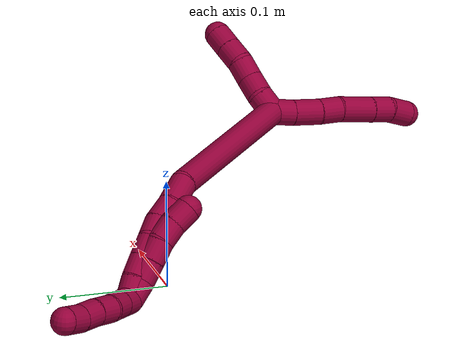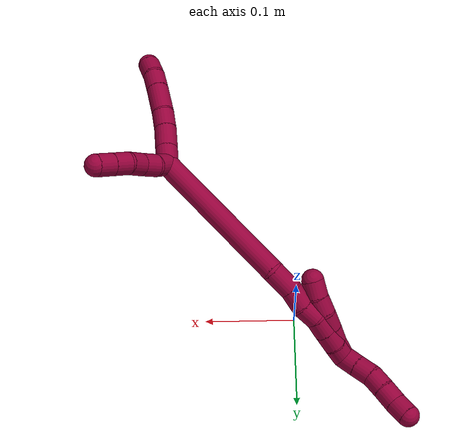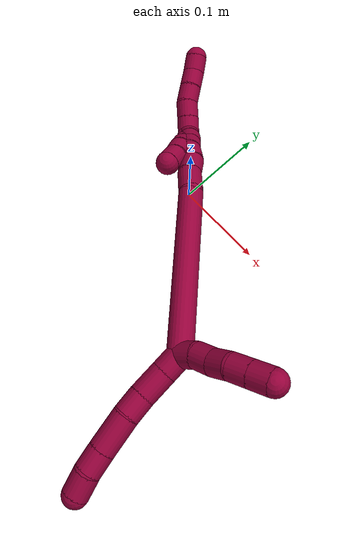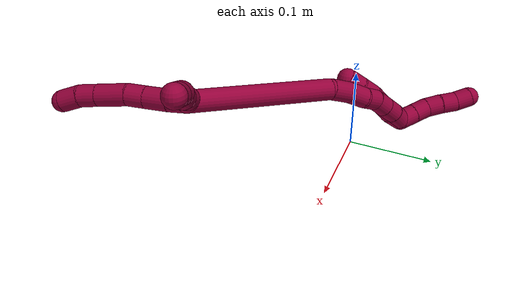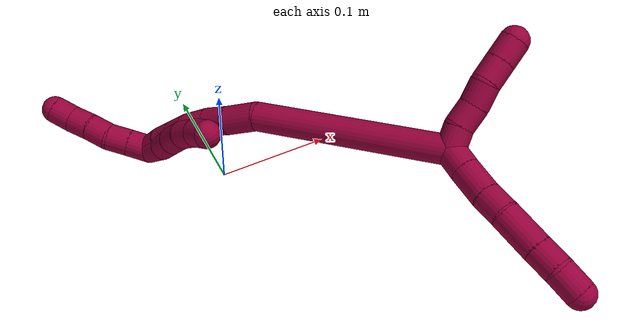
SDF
<sdf version="1.7">
 <world name="default">
  <model name="8">
   <static>0</static>
   <link name="8">
    <collision name="collision-cylinder-e_1_2_8">
     <pose>-0.001232 -0.010284 -0.001096 1.67697 -0.11859 -0.131864</pose>
     <geometry><cylinder><radius>0.0125</radius><length>0.02083</length></cylinder></geometry>
     <surface>
      <friction><ode><mu>1.16</mu><mu2>1.16</mu2><slip1>0</slip1><slip2>0</slip2></ode></friction>
      <contact><ode><kp>1e+06</kp><kd>1</kd><max_vel>0</max_vel><min_depth>0.001</min_depth></ode></contact>
     </surface>
    </collision>
    <visual name="visual-cylinder-e_1_2_8">
     <pose>-0.001232 -0.010284 -0.001096 1.67697 -0.11859 -0.131864</pose>
     <geometry><cylinder><radius>0.0125</radius><length>0.02083</length></cylinder></geometry>
     <material><ambient>0.584314 0 0.227451 1</ambient></material>
    </visual>
    <collision name="collision-cylinder-e_2_8_9">
     <pose>-0.003993 -0.034312 -0.002622 1.60207 -0.110731 -0.114242</pose>
     <geometry><cylinder><radius>0.0125</radius><length>0.027672</length></cylinder></geometry>
     <surface>
      <friction><ode><mu>1.16</mu><mu2>1.16</mu2><slip1>0</slip1><slip2>0</slip2></ode></friction>
      <contact><ode><kp>1e+06</kp><kd>1</kd><max_vel>0</max_vel><min_depth>0.001</min_depth></ode></contact>
     </surface>
    </collision>
    <visual name="visual-cylinder-e_2_8_9">
     <pose>-0.003993 -0.034312 -0.002622 1.60207 -0.110731 -0.114242</pose>
     <geometry><cylinder><radius>0.0125</radius><length>0.027672</length></cylinder></geometry>
     <material><ambient>0.584314 0 0.227451 1</ambient></material>
    </visual>
    <collision name="collision-cylinder-e_3_9_10">
     <pose>-0.005895 -0.05883 -0.00276 1.54372 -0.034593 -0.033669</pose>
     <geometry><cylinder><radius>0.0125</radius><length>0.021568</length></cylinder></geometry>
     <surface>
      <friction><ode><mu>1.16</mu><mu2>1.16</mu2><slip1>0</slip1><slip2>0</slip2></ode></friction>
      <contact><ode><kp>1e+06</kp><kd>1</kd><max_vel>0</max_vel><min_depth>0.001</min_depth></ode></contact>
     </surface>
    </collision>
    <visual name="visual-cylinder-e_3_9_10">
     <pose>-0.005895 -0.05883 -0.00276 1.54372 -0.034593 -0.033669</pose>
     <geometry><cylinder><radius>0.0125</radius><length>0.021568</length></cylinder></geometry>
     <material><ambient>0.584314 0 0.227451 1</ambient></material>
    </visual>
    <collision name="collision-cylinder-e_4_10_11">
     <pose>-0.006037 -0.087174 -0.004599 1.69145 0.013057 0.014736</pose>
     <geometry><cylinder><radius>0.0125</radius><length>0.035401</length></cylinder></geometry>
     <surface>
      <friction><ode><mu>1.16</mu><mu2>1.16</mu2><slip1>0</slip1><slip2>0</slip2></ode></friction>
      <contact><ode><kp>1e+06</kp><kd>1</kd><max_vel>0</max_vel><min_depth>0.001</min_depth></ode></contact>
     </surface>
    </collision>
    <visual name="visual-cylinder-e_4_10_11">
     <pose>-0.006037 -0.087174 -0.004599 1.69145 0.013057 0.014736</pose>
     <geometry><cylinder><radius>0.0125</radius><length>0.035401</length></cylinder></geometry>
     <material><ambient>0.584314 0 0.227451 1</ambient></material>
    </visual>
    <collision name="collision-cylinder-e_5_11_12">
     <pose>-0.005403 -0.115452 -0.007976 1.68674 0.037351 0.041953</pose>
     <geometry><cylinder><radius>0.0125</radius><length>0.021573</length></cylinder></geometry>
     <surface>
      <friction><ode><mu>1.16</mu><mu2>1.16</mu2><slip1>0</slip1><slip2>0</slip2></ode></friction>
      <contact><ode><kp>1e+06</kp><kd>1</kd><max_vel>0</max_vel><min_depth>0.001</min_depth></ode></contact>
     </surface>
    </collision>
    <visual name="visual-cylinder-e_5_11_12">
     <pose>-0.005403 -0.115452 -0.007976 1.68674 0.037351 0.041953</pose>
     <geometry><cylinder><radius>0.0125</radius><length>0.021573</length></cylinder></geometry>
     <material><ambient>0.584314 0 0.227451 1</ambient></material>
    </visual>
    <collision name="collision-cylinder-e_6_12_6">
     <pose>-0.003808 -0.136955 -0.01293 1.90149 0.104105 0.145681</pose>
     <geometry><cylinder><radius>0.0125</radius><length>0.022955</length></cylinder></geometry>
     <surface>
      <friction><ode><mu>1.16</mu><mu2>1.16</mu2><slip1>0</slip1><slip2>0</slip2></ode></friction>
      <contact><ode><kp>1e+06</kp><kd>1</kd><max_vel>0</max_vel><min_depth>0.001</min_depth></ode></contact>
     </surface>
    </collision>
    <visual name="visual-cylinder-e_6_12_6">
     <pose>-0.003808 -0.136955 -0.01293 1.90149 0.104105 0.145681</pose>
     <geometry><cylinder><radius>0.0125</radius><length>0.022955</length></cylinder></geometry>
     <material><ambient>0.584314 0 0.227451 1</ambient></material>
    </visual>
    <collision name="collision-cylinder-e_1_2_13">
     <pose>0.006966 0.0036 0.006206 -0.525706 0.770616 -0.217406</pose>
     <geometry><cylinder><radius>0.0125</radius><length>0.02</length></cylinder></geometry>
     <surface>
      <friction><ode><mu>1.16</mu><mu2>1.16</mu2><slip1>0</slip1><slip2>0</slip2></ode></friction>
      <contact><ode><kp>1e+06</kp><kd>1</kd><max_vel>0</max_vel><min_depth>0.001</min_depth></ode></contact>
     </surface>
    </collision>
    <visual name="visual-cylinder-e_1_2_13">
     <pose>0.006966 0.0036 0.006206 -0.525706 0.770616 -0.217406</pose>
     <geometry><cylinder><radius>0.0125</radius><length>0.02</length></cylinder></geometry>
     <material><ambient>0.584314 0 0.227451 1</ambient></material>
    </visual>
    <collision name="collision-cylinder-e_2_13_14">
     <pose>0.022261 0.008605 0.017764 -0.256623 0.984484 -0.13816</pose>
     <geometry><cylinder><radius>0.0125</radius><length>0.02</length></cylinder></geometry>
     <surface>
      <friction><ode><mu>1.16</mu><mu2>1.16</mu2><slip1>0</slip1><slip2>0</slip2></ode></friction>
      <contact><ode><kp>1e+06</kp><kd>1</kd><max_vel>0</max_vel><min_depth>0.001</min_depth></ode></contact>
     </surface>
    </collision>
    <visual name="visual-cylinder-e_2_13_14">
     <pose>0.022261 0.008605 0.017764 -0.256623 0.984484 -0.13816</pose>
     <geometry><cylinder><radius>0.0125</radius><length>0.02</length></cylinder></geometry>
     <material><ambient>0.584314 0 0.227451 1</ambient></material>
    </visual>
    <collision name="collision-cylinder-e_3_14_15">
     <pose>0.037744 0.01226 0.029732 -0.327866 0.796946 -0.139055</pose>
     <geometry><cylinder><radius>0.0125</radius><length>0.02</length></cylinder></geometry>
     <surface>
      <friction><ode><mu>1.16</mu><mu2>1.16</mu2><slip1>0</slip1><slip2>0</slip2></ode></friction>
      <contact><ode><kp>1e+06</kp><kd>1</kd><max_vel>0</max_vel><min_depth>0.001</min_depth></ode></contact>
     </surface>
    </collision>
    <visual name="visual-cylinder-e_3_14_15">
     <pose>0.037744 0.01226 0.029732 -0.327866 0.796946 -0.139055</pose>
     <geometry><cylinder><radius>0.0125</radius><length>0.02</length></cylinder></geometry>
     <material><ambient>0.584314 0 0.227451 1</ambient></material>
    </visual>
    <collision name="collision-cylinder-e_4_15_16">
     <pose>0.053659 0.016612 0.040684 -0.451323 1.06813 -0.269882</pose>
     <geometry><cylinder><radius>0.0125</radius><length>0.02</length></cylinder></geometry>
     <surface>
      <friction><ode><mu>1.16</mu><mu2>1.16</mu2><slip1>0</slip1><slip2>0</slip2></ode></friction>
      <contact><ode><kp>1e+06</kp><kd>1</kd><max_vel>0</max_vel><min_depth>0.001</min_depth></ode></contact>
     </surface>
    </collision>
    <visual name="visual-cylinder-e_4_15_16">
     <pose>0.053659 0.016612 0.040684 -0.451323 1.06813 -0.269882</pose>
     <geometry><cylinder><radius>0.0125</radius><length>0.02</length></cylinder></geometry>
     <material><ambient>0.584314 0 0.227451 1</ambient></material>
    </visual>
    <collision name="collision-cylinder-e_5_16_5">
     <pose>0.071166 0.020762 0.049417 -0.435828 1.06425 -0.259283</pose>
     <geometry><cylinder><radius>0.0125</radius><length>0.02</length></cylinder></geometry>
     <surface>
      <friction><ode><mu>1.16</mu><mu2>1.16</mu2><slip1>0</slip1><slip2>0</slip2></ode></friction>
      <contact><ode><kp>1e+06</kp><kd>1</kd><max_vel>0</max_vel><min_depth>0.001</min_depth></ode></contact>
     </surface>
    </collision>
    <visual name="visual-cylinder-e_5_16_5">
     <pose>0.071166 0.020762 0.049417 -0.435828 1.06425 -0.259283</pose>
     <geometry><cylinder><radius>0.0125</radius><length>0.02</length></cylinder></geometry>
     <material><ambient>0.584314 0 0.227451 1</ambient></material>
    </visual>
    <collision name="collision-cylinder-e_1_2_17">
     <pose>-0.046475 0.06876 -0.0106 -1.72376 -0.588931 0.679794</pose>
     <geometry><cylinder><radius>0.0125</radius><length>0.167334</length></cylinder></geometry>
     <surface>
      <friction><ode><mu>1.16</mu><mu2>1.16</mu2><slip1>0</slip1><slip2>0</slip2></ode></friction>
      <contact><ode><kp>1e+06</kp><kd>1</kd><max_vel>0</max_vel><min_depth>0.001</min_depth></ode></contact>
     </surface>
    </collision>
    <visual name="visual-cylinder-e_1_2_17">
     <pose>-0.046475 0.06876 -0.0106 -1.72376 -0.588931 0.679794</pose>
     <geometry><cylinder><radius>0.0125</radius><length>0.167334</length></cylinder></geometry>
     <material><ambient>0.584314 0 0.227451 1</ambient></material>
    </visual>
    <collision name="collision-cylinder-e_2_17_18">
     <pose>-0.10168 0.147381 -0.027065 -2.10728 -0.650489 1.07032</pose>
     <geometry><cylinder><radius>0.0125</radius><length>0.028835</length></cylinder></geometry>
     <surface>
      <friction><ode><mu>1.16</mu><mu2>1.16</mu2><slip1>0</slip1><slip2>0</slip2></ode></friction>
      <contact><ode><kp>1e+06</kp><kd>1</kd><max_vel>0</max_vel><min_depth>0.001</min_depth></ode></contact>
     </surface>
    </collision>
    <visual name="visual-cylinder-e_2_17_18">
     <pose>-0.10168 0.147381 -0.027065 -2.10728 -0.650489 1.07032</pose>
     <geometry><cylinder><radius>0.0125</radius><length>0.028835</length></cylinder></geometry>
     <material><ambient>0.584314 0 0.227451 1</ambient></material>
    </visual>
    <collision name="collision-cylinder-e_3_18_19">
     <pose>-0.115539 0.165752 -0.038479 -2.14873 -0.467476 0.828241</pose>
     <geometry><cylinder><radius>0.0125</radius><length>0.022761</length></cylinder></geometry>
     <surface>
      <friction><ode><mu>1.16</mu><mu2>1.16</mu2><slip1>0</slip1><slip2>0</slip2></ode></friction>
      <contact><ode><kp>1e+06</kp><kd>1</kd><max_vel>0</max_vel><min_depth>0.001</min_depth></ode></contact>
     </surface>
    </collision>
    <visual name="visual-cylinder-e_3_18_19">
     <pose>-0.115539 0.165752 -0.038479 -2.14873 -0.467476 0.828241</pose>
     <geometry><cylinder><radius>0.0125</radius><length>0.022761</length></cylinder></geometry>
     <material><ambient>0.584314 0 0.227451 1</ambient></material>
    </visual>
    <collision name="collision-cylinder-e_4_19_20">
     <pose>-0.127587 0.180551 -0.04868 -2.20746 -0.724243 1.28857</pose>
     <geometry><cylinder><radius>0.0125</radius><length>0.020887</length></cylinder></geometry>
     <surface>
      <friction><ode><mu>1.16</mu><mu2>1.16</mu2><slip1>0</slip1><slip2>0</slip2></ode></friction>
      <contact><ode><kp>1e+06</kp><kd>1</kd><max_vel>0</max_vel><min_depth>0.001</min_depth></ode></contact>
     </surface>
    </collision>
    <visual name="visual-cylinder-e_4_19_20">
     <pose>-0.127587 0.180551 -0.04868 -2.20746 -0.724243 1.28857</pose>
     <geometry><cylinder><radius>0.0125</radius><length>0.020887</length></cylinder></geometry>
     <material><ambient>0.584314 0 0.227451 1</ambient></material>
    </visual>
    <collision name="collision-cylinder-e_5_20_21">
     <pose>-0.139146 0.192584 -0.060134 -2.44051 -0.480315 1.18025</pose>
     <geometry><cylinder><radius>0.0125</radius><length>0.02008</length></cylinder></geometry>
     <surface>
      <friction><ode><mu>1.16</mu><mu2>1.16</mu2><slip1>0</slip1><slip2>0</slip2></ode></friction>
      <contact><ode><kp>1e+06</kp><kd>1</kd><max_vel>0</max_vel><min_depth>0.001</min_depth></ode></contact>
     </surface>
    </collision>
    <visual name="visual-cylinder-e_5_20_21">
     <pose>-0.139146 0.192584 -0.060134 -2.44051 -0.480315 1.18025</pose>
     <geometry><cylinder><radius>0.0125</radius><length>0.02008</length></cylinder></geometry>
     <material><ambient>0.584314 0 0.227451 1</ambient></material>
    </visual>
    <collision name="collision-cylinder-e_6_21_22">
     <pose>-0.148549 0.203916 -0.073726 -2.4528 -0.496481 1.23036</pose>
     <geometry><cylinder><radius>0.0125</radius><length>0.020001</length></cylinder></geometry>
     <surface>
      <friction><ode><mu>1.16</mu><mu2>1.16</mu2><slip1>0</slip1><slip2>0</slip2></ode></friction>
      <contact><ode><kp>1e+06</kp><kd>1</kd><max_vel>0</max_vel><min_depth>0.001</min_depth></ode></contact>
     </surface>
    </collision>
    <visual name="visual-cylinder-e_6_21_22">
     <pose>-0.148549 0.203916 -0.073726 -2.4528 -0.496481 1.23036</pose>
     <geometry><cylinder><radius>0.0125</radius><length>0.020001</length></cylinder></geometry>
     <material><ambient>0.584314 0 0.227451 1</ambient></material>
    </visual>
    <collision name="collision-cylinder-e_7_22_1">
     <pose>-0.158187 0.214101 -0.088007 -2.59137 -0.506365 1.48385</pose>
     <geometry><cylinder><radius>0.0125</radius><length>0.020102</length></cylinder></geometry>
     <surface>
      <friction><ode><mu>1.16</mu><mu2>1.16</mu2><slip1>0</slip1><slip2>0</slip2></ode></friction>
      <contact><ode><kp>1e+06</kp><kd>1</kd><max_vel>0</max_vel><min_depth>0.001</min_depth></ode></contact>
     </surface>
    </collision>
    <visual name="visual-cylinder-e_7_22_1">
     <pose>-0.158187 0.214101 -0.088007 -2.59137 -0.506365 1.48385</pose>
     <geometry><cylinder><radius>0.0125</radius><length>0.020102</length></cylinder></geometry>
     <material><ambient>0.584314 0 0.227451 1</ambient></material>
    </visual>
    <collision name="collision-cylinder-e_1_1_23">
     <pose>-0.159301 0.211902 -0.0892 0.823211 0.38561 0.170041</pose>
     <geometry><cylinder><radius>0.0125</radius><length>0.02</length></cylinder></geometry>
     <surface>
      <friction><ode><mu>1.16</mu><mu2>1.16</mu2><slip1>0</slip1><slip2>0</slip2></ode></friction>
      <contact><ode><kp>1e+06</kp><kd>1</kd><max_vel>0</max_vel><min_depth>0.001</min_depth></ode></contact>
     </surface>
    </collision>
    <visual name="visual-cylinder-e_1_1_23">
     <pose>-0.159301 0.211902 -0.0892 0.823211 0.38561 0.170041</pose>
     <geometry><cylinder><radius>0.0125</radius><length>0.02</length></cylinder></geometry>
     <material><ambient>0.584314 0 0.227451 1</ambient></material>
    </visual>
    <collision name="collision-cylinder-e_2_23_24">
     <pose>-0.152794 0.199458 -0.07512 0.627997 0.278108 0.090837</pose>
     <geometry><cylinder><radius>0.0125</radius><length>0.02</length></cylinder></geometry>
     <surface>
      <friction><ode><mu>1.16</mu><mu2>1.16</mu2><slip1>0</slip1><slip2>0</slip2></ode></friction>
      <contact><ode><kp>1e+06</kp><kd>1</kd><max_vel>0</max_vel><min_depth>0.001</min_depth></ode></contact>
     </surface>
    </collision>
    <visual name="visual-cylinder-e_2_23_24">
     <pose>-0.152794 0.199458 -0.07512 0.627997 0.278108 0.090837</pose>
     <geometry><cylinder><radius>0.0125</radius><length>0.02</length></cylinder></geometry>
     <material><ambient>0.584314 0 0.227451 1</ambient></material>
    </visual>
    <collision name="collision-cylinder-e_3_24_25">
     <pose>-0.147051 0.188106 -0.05969 0.640663 0.304417 0.101692</pose>
     <geometry><cylinder><radius>0.0125</radius><length>0.02</length></cylinder></geometry>
     <surface>
      <friction><ode><mu>1.16</mu><mu2>1.16</mu2><slip1>0</slip1><slip2>0</slip2></ode></friction>
      <contact><ode><kp>1e+06</kp><kd>1</kd><max_vel>0</max_vel><min_depth>0.001</min_depth></ode></contact>
     </surface>
    </collision>
    <visual name="visual-cylinder-e_3_24_25">
     <pose>-0.147051 0.188106 -0.05969 0.640663 0.304417 0.101692</pose>
     <geometry><cylinder><radius>0.0125</radius><length>0.02</length></cylinder></geometry>
     <material><ambient>0.584314 0 0.227451 1</ambient></material>
    </visual>
    <collision name="collision-cylinder-e_4_25_26">
     <pose>-0.140999 0.17526 -0.045746 0.848442 0.310415 0.141099</pose>
     <geometry><cylinder><radius>0.0125</radius><length>0.02</length></cylinder></geometry>
     <surface>
      <friction><ode><mu>1.16</mu><mu2>1.16</mu2><slip1>0</slip1><slip2>0</slip2></ode></friction>
      <contact><ode><kp>1e+06</kp><kd>1</kd><max_vel>0</max_vel><min_depth>0.001</min_depth></ode></contact>
     </surface>
    </collision>
    <visual name="visual-cylinder-e_4_25_26">
     <pose>-0.140999 0.17526 -0.045746 0.848442 0.310415 0.141099</pose>
     <geometry><cylinder><radius>0.0125</radius><length>0.02</length></cylinder></geometry>
     <material><ambient>0.584314 0 0.227451 1</ambient></material>
    </visual>
    <collision name="collision-cylinder-e_5_26_4">
     <pose>-0.136391 0.160095 -0.033684 0.947449 0.156023 0.080107</pose>
     <geometry><cylinder><radius>0.0125</radius><length>0.02</length></cylinder></geometry>
     <surface>
      <friction><ode><mu>1.16</mu><mu2>1.16</mu2><slip1>0</slip1><slip2>0</slip2></ode></friction>
      <contact><ode><kp>1e+06</kp><kd>1</kd><max_vel>0</max_vel><min_depth>0.001</min_depth></ode></contact>
     </surface>
    </collision>
    <visual name="visual-cylinder-e_5_26_4">
     <pose>-0.136391 0.160095 -0.033684 0.947449 0.156023 0.080107</pose>
     <geometry><cylinder><radius>0.0125</radius><length>0.02</length></cylinder></geometry>
     <material><ambient>0.584314 0 0.227451 1</ambient></material>
    </visual>
    <collision name="collision-cylinder-e_1_1_27">
     <pose>-0.169202 0.226394 -0.09375 -1.34729 -0.661088 0.534669</pose>
     <geometry><cylinder><radius>0.0125</radius><length>0.02</length></cylinder></geometry>
     <surface>
      <friction><ode><mu>1.16</mu><mu2>1.16</mu2><slip1>0</slip1><slip2>0</slip2></ode></friction>
      <contact><ode><kp>1e+06</kp><kd>1</kd><max_vel>0</max_vel><min_depth>0.001</min_depth></ode></contact>
     </surface>
    </collision>
    <visual name="visual-cylinder-e_1_1_27">
     <pose>-0.169202 0.226394 -0.09375 -1.34729 -0.661088 0.534669</pose>
     <geometry><cylinder><radius>0.0125</radius><length>0.02</length></cylinder></geometry>
     <material><ambient>0.584314 0 0.227451 1</ambient></material>
    </visual>
    <collision name="collision-cylinder-e_2_27_28">
     <pose>-0.181618 0.241681 -0.09027 -1.34653 -0.678535 0.548758</pose>
     <geometry><cylinder><radius>0.0125</radius><length>0.02</length></cylinder></geometry>
     <surface>
      <friction><ode><mu>1.16</mu><mu2>1.16</mu2><slip1>0</slip1><slip2>0</slip2></ode></friction>
      <contact><ode><kp>1e+06</kp><kd>1</kd><max_vel>0</max_vel><min_depth>0.001</min_depth></ode></contact>
     </surface>
    </collision>
    <visual name="visual-cylinder-e_2_27_28">
     <pose>-0.181618 0.241681 -0.09027 -1.34653 -0.678535 0.548758</pose>
     <geometry><cylinder><radius>0.0125</radius><length>0.02</length></cylinder></geometry>
     <material><ambient>0.584314 0 0.227451 1</ambient></material>
    </visual>
    <collision name="collision-cylinder-e_3_28_29">
     <pose>-0.192084 0.258249 -0.087178 -1.42044 -0.43231 0.373255</pose>
     <geometry><cylinder><radius>0.0125</radius><length>0.02</length></cylinder></geometry>
     <surface>
      <friction><ode><mu>1.16</mu><mu2>1.16</mu2><slip1>0</slip1><slip2>0</slip2></ode></friction>
      <contact><ode><kp>1e+06</kp><kd>1</kd><max_vel>0</max_vel><min_depth>0.001</min_depth></ode></contact>
     </surface>
    </collision>
    <visual name="visual-cylinder-e_3_28_29">
     <pose>-0.192084 0.258249 -0.087178 -1.42044 -0.43231 0.373255</pose>
     <geometry><cylinder><radius>0.0125</radius><length>0.02</length></cylinder></geometry>
     <material><ambient>0.584314 0 0.227451 1</ambient></material>
    </visual>
    <collision name="collision-cylinder-e_4_29_30">
     <pose>-0.2006 0.276233 -0.085427 -1.52741 -0.447435 0.429021</pose>
     <geometry><cylinder><radius>0.0125</radius><length>0.02</length></cylinder></geometry>
     <surface>
      <friction><ode><mu>1.16</mu><mu2>1.16</mu2><slip1>0</slip1><slip2>0</slip2></ode></friction>
      <contact><ode><kp>1e+06</kp><kd>1</kd><max_vel>0</max_vel><min_depth>0.001</min_depth></ode></contact>
     </surface>
    </collision>
    <visual name="visual-cylinder-e_4_29_30">
     <pose>-0.2006 0.276233 -0.085427 -1.52741 -0.447435 0.429021</pose>
     <geometry><cylinder><radius>0.0125</radius><length>0.02</length></cylinder></geometry>
     <material><ambient>0.584314 0 0.227451 1</ambient></material>
    </visual>
    <collision name="collision-cylinder-e_5_30_3">
     <pose>-0.209304 0.293996 -0.08299 -1.34119 -0.453 0.36161</pose>
     <geometry><cylinder><radius>0.0125</radius><length>0.02</length></cylinder></geometry>
     <surface>
      <friction><ode><mu>1.16</mu><mu2>1.16</mu2><slip1>0</slip1><slip2>0</slip2></ode></friction>
      <contact><ode><kp>1e+06</kp><kd>1</kd><max_vel>0</max_vel><min_depth>0.001</min_depth></ode></contact>
     </surface>
    </collision>
    <visual name="visual-cylinder-e_5_30_3">
     <pose>-0.209304 0.293996 -0.08299 -1.34119 -0.453 0.36161</pose>
     <geometry><cylinder><radius>0.0125</radius><length>0.02</length></cylinder></geometry>
     <material><ambient>0.584314 0 0.227451 1</ambient></material>
    </visual>
    <collision name="collision-sphere-3">
     <pose>-0.21368 0.302751 -0.080943 0 -0 0</pose>
     <geometry><sphere><radius>0.0125</radius></sphere></geometry>
     <surface>
      <friction><ode><mu>1.16</mu><mu2>1.16</mu2><slip1>0</slip1><slip2>0</slip2></ode></friction>
      <contact><ode><kp>1e+06</kp><kd>1</kd><max_vel>0</max_vel><min_depth>0.001</min_depth></ode></contact>
     </surface>
    </collision>
    <visual name="visual-sphere-3">
     <pose>-0.21368 0.302751 -0.080943 0 -0 0</pose>
     <geometry><sphere><radius>0.0125</radius></sphere></geometry>
     <material><ambient>0.584314 0 0.227451 1</ambient></material>
    </visual>
    <collision name="collision-sphere-30">
     <pose>-0.204927 0.28524 -0.085036 0 -0 0</pose>
     <geometry><sphere><radius>0.0125</radius></sphere></geometry>
     <surface>
      <friction><ode><mu>1.16</mu><mu2>1.16</mu2><slip1>0</slip1><slip2>0</slip2></ode></friction>
      <contact><ode><kp>1e+06</kp><kd>1</kd><max_vel>0</max_vel><min_depth>0.001</min_depth></ode></contact>
     </surface>
    </collision>
    <visual name="visual-sphere-30">
     <pose>-0.204927 0.28524 -0.085036 0 -0 0</pose>
     <geometry><sphere><radius>0.0125</radius></sphere></geometry>
     <material><ambient>0.584314 0 0.227451 1</ambient></material>
    </visual>
    <collision name="collision-sphere-29">
     <pose>-0.196274 0.267226 -0.085818 0 -0 0</pose>
     <geometry><sphere><radius>0.0125</radius></sphere></geometry>
     <surface>
      <friction><ode><mu>1.16</mu><mu2>1.16</mu2><slip1>0</slip1><slip2>0</slip2></ode></friction>
      <contact><ode><kp>1e+06</kp><kd>1</kd><max_vel>0</max_vel><min_depth>0.001</min_depth></ode></contact>
     </surface>
    </collision>
    <visual name="visual-sphere-29">
     <pose>-0.196274 0.267226 -0.085818 0 -0 0</pose>
     <geometry><sphere><radius>0.0125</radius></sphere></geometry>
     <material><ambient>0.584314 0 0.227451 1</ambient></material>
    </visual>
    <collision name="collision-sphere-28">
     <pose>-0.187894 0.249271 -0.088538 0 -0 0</pose>
     <geometry><sphere><radius>0.0125</radius></sphere></geometry>
     <surface>
      <friction><ode><mu>1.16</mu><mu2>1.16</mu2><slip1>0</slip1><slip2>0</slip2></ode></friction>
      <contact><ode><kp>1e+06</kp><kd>1</kd><max_vel>0</max_vel><min_depth>0.001</min_depth></ode></contact>
     </surface>
    </collision>
    <visual name="visual-sphere-28">
     <pose>-0.187894 0.249271 -0.088538 0 -0 0</pose>
     <geometry><sphere><radius>0.0125</radius></sphere></geometry>
     <material><ambient>0.584314 0 0.227451 1</ambient></material>
    </visual>
    <collision name="collision-sphere-27">
     <pose>-0.175341 0.234091 -0.092001 0 -0 0</pose>
     <geometry><sphere><radius>0.0125</radius></sphere></geometry>
     <surface>
      <friction><ode><mu>1.16</mu><mu2>1.16</mu2><slip1>0</slip1><slip2>0</slip2></ode></friction>
      <contact><ode><kp>1e+06</kp><kd>1</kd><max_vel>0</max_vel><min_depth>0.001</min_depth></ode></contact>
     </surface>
    </collision>
    <visual name="visual-sphere-27">
     <pose>-0.175341 0.234091 -0.092001 0 -0 0</pose>
     <geometry><sphere><radius>0.0125</radius></sphere></geometry>
     <material><ambient>0.584314 0 0.227451 1</ambient></material>
    </visual>
    <collision name="collision-sphere-4">
     <pose>-0.134837 0.152074 -0.027918 0 -0 0</pose>
     <geometry><sphere><radius>0.0125</radius></sphere></geometry>
     <surface>
      <friction><ode><mu>1.16</mu><mu2>1.16</mu2><slip1>0</slip1><slip2>0</slip2></ode></friction>
      <contact><ode><kp>1e+06</kp><kd>1</kd><max_vel>0</max_vel><min_depth>0.001</min_depth></ode></contact>
     </surface>
    </collision>
    <visual name="visual-sphere-4">
     <pose>-0.134837 0.152074 -0.027918 0 -0 0</pose>
     <geometry><sphere><radius>0.0125</radius></sphere></geometry>
     <material><ambient>0.584314 0 0.227451 1</ambient></material>
    </visual>
    <collision name="collision-sphere-26">
     <pose>-0.137945 0.168116 -0.039451 0 -0 0</pose>
     <geometry><sphere><radius>0.0125</radius></sphere></geometry>
     <surface>
      <friction><ode><mu>1.16</mu><mu2>1.16</mu2><slip1>0</slip1><slip2>0</slip2></ode></friction>
      <contact><ode><kp>1e+06</kp><kd>1</kd><max_vel>0</max_vel><min_depth>0.001</min_depth></ode></contact>
     </surface>
    </collision>
    <visual name="visual-sphere-26">
     <pose>-0.137945 0.168116 -0.039451 0 -0 0</pose>
     <geometry><sphere><radius>0.0125</radius></sphere></geometry>
     <material><ambient>0.584314 0 0.227451 1</ambient></material>
    </visual>
    <collision name="collision-sphere-25">
     <pose>-0.144054 0.182404 -0.052042 0 -0 0</pose>
     <geometry><sphere><radius>0.0125</radius></sphere></geometry>
     <surface>
      <friction><ode><mu>1.16</mu><mu2>1.16</mu2><slip1>0</slip1><slip2>0</slip2></ode></friction>
      <contact><ode><kp>1e+06</kp><kd>1</kd><max_vel>0</max_vel><min_depth>0.001</min_depth></ode></contact>
     </surface>
    </collision>
    <visual name="visual-sphere-25">
     <pose>-0.144054 0.182404 -0.052042 0 -0 0</pose>
     <geometry><sphere><radius>0.0125</radius></sphere></geometry>
     <material><ambient>0.584314 0 0.227451 1</ambient></material>
    </visual>
    <collision name="collision-sphere-24">
     <pose>-0.150049 0.193809 -0.067339 0 -0 0</pose>
     <geometry><sphere><radius>0.0125</radius></sphere></geometry>
     <surface>
      <friction><ode><mu>1.16</mu><mu2>1.16</mu2><slip1>0</slip1><slip2>0</slip2></ode></friction>
      <contact><ode><kp>1e+06</kp><kd>1</kd><max_vel>0</max_vel><min_depth>0.001</min_depth></ode></contact>
     </surface>
    </collision>
    <visual name="visual-sphere-24">
     <pose>-0.150049 0.193809 -0.067339 0 -0 0</pose>
     <geometry><sphere><radius>0.0125</radius></sphere></geometry>
     <material><ambient>0.584314 0 0.227451 1</ambient></material>
    </visual>
    <collision name="collision-sphere-23">
     <pose>-0.155539 0.205108 -0.082901 0 -0 0</pose>
     <geometry><sphere><radius>0.0125</radius></sphere></geometry>
     <surface>
      <friction><ode><mu>1.16</mu><mu2>1.16</mu2><slip1>0</slip1><slip2>0</slip2></ode></friction>
      <contact><ode><kp>1e+06</kp><kd>1</kd><max_vel>0</max_vel><min_depth>0.001</min_depth></ode></contact>
     </surface>
    </collision>
    <visual name="visual-sphere-23">
     <pose>-0.155539 0.205108 -0.082901 0 -0 0</pose>
     <geometry><sphere><radius>0.0125</radius></sphere></geometry>
     <material><ambient>0.584314 0 0.227451 1</ambient></material>
    </visual>
    <collision name="collision-sphere-1">
     <pose>-0.163062 0.218697 -0.0955 0 -0 0</pose>
     <geometry><sphere><radius>0.0125</radius></sphere></geometry>
     <surface>
      <friction><ode><mu>1.16</mu><mu2>1.16</mu2><slip1>0</slip1><slip2>0</slip2></ode></friction>
      <contact><ode><kp>1e+06</kp><kd>1</kd><max_vel>0</max_vel><min_depth>0.001</min_depth></ode></contact>
     </surface>
    </collision>
    <visual name="visual-sphere-1">
     <pose>-0.163062 0.218697 -0.0955 0 -0 0</pose>
     <geometry><sphere><radius>0.0125</radius></sphere></geometry>
     <material><ambient>0.584314 0 0.227451 1</ambient></material>
    </visual>
    <collision name="collision-sphere-22">
     <pose>-0.153312 0.209505 -0.080515 0 -0 0</pose>
     <geometry><sphere><radius>0.0125</radius></sphere></geometry>
     <surface>
      <friction><ode><mu>1.16</mu><mu2>1.16</mu2><slip1>0</slip1><slip2>0</slip2></ode></friction>
      <contact><ode><kp>1e+06</kp><kd>1</kd><max_vel>0</max_vel><min_depth>0.001</min_depth></ode></contact>
     </surface>
    </collision>
    <visual name="visual-sphere-22">
     <pose>-0.153312 0.209505 -0.080515 0 -0 0</pose>
     <geometry><sphere><radius>0.0125</radius></sphere></geometry>
     <material><ambient>0.584314 0 0.227451 1</ambient></material>
    </visual>
    <collision name="collision-sphere-21">
     <pose>-0.143785 0.198327 -0.066938 0 -0 0</pose>
     <geometry><sphere><radius>0.0125</radius></sphere></geometry>
     <surface>
      <friction><ode><mu>1.16</mu><mu2>1.16</mu2><slip1>0</slip1><slip2>0</slip2></ode></friction>
      <contact><ode><kp>1e+06</kp><kd>1</kd><max_vel>0</max_vel><min_depth>0.001</min_depth></ode></contact>
     </surface>
    </collision>
    <visual name="visual-sphere-21">
     <pose>-0.143785 0.198327 -0.066938 0 -0 0</pose>
     <geometry><sphere><radius>0.0125</radius></sphere></geometry>
     <material><ambient>0.584314 0 0.227451 1</ambient></material>
    </visual>
    <collision name="collision-sphere-12">
     <pose>-0.005001 -0.126158 -0.009223 0 -0 0</pose>
     <geometry><sphere><radius>0.0125</radius></sphere></geometry>
     <surface>
      <friction><ode><mu>1.16</mu><mu2>1.16</mu2><slip1>0</slip1><slip2>0</slip2></ode></friction>
      <contact><ode><kp>1e+06</kp><kd>1</kd><max_vel>0</max_vel><min_depth>0.001</min_depth></ode></contact>
     </surface>
    </collision>
    <visual name="visual-sphere-12">
     <pose>-0.005001 -0.126158 -0.009223 0 -0 0</pose>
     <geometry><sphere><radius>0.0125</radius></sphere></geometry>
     <material><ambient>0.584314 0 0.227451 1</ambient></material>
    </visual>
    <collision name="collision-sphere-11">
     <pose>-0.005806 -0.104745 -0.006729 0 -0 0</pose>
     <geometry><sphere><radius>0.0125</radius></sphere></geometry>
     <surface>
      <friction><ode><mu>1.16</mu><mu2>1.16</mu2><slip1>0</slip1><slip2>0</slip2></ode></friction>
      <contact><ode><kp>1e+06</kp><kd>1</kd><max_vel>0</max_vel><min_depth>0.001</min_depth></ode></contact>
     </surface>
    </collision>
    <visual name="visual-sphere-11">
     <pose>-0.005806 -0.104745 -0.006729 0 -0 0</pose>
     <geometry><sphere><radius>0.0125</radius></sphere></geometry>
     <material><ambient>0.584314 0 0.227451 1</ambient></material>
    </visual>
    <collision name="collision-sphere-10">
     <pose>-0.006268 -0.069604 -0.002468 0 -0 0</pose>
     <geometry><sphere><radius>0.0125</radius></sphere></geometry>
     <surface>
      <friction><ode><mu>1.16</mu><mu2>1.16</mu2><slip1>0</slip1><slip2>0</slip2></ode></friction>
      <contact><ode><kp>1e+06</kp><kd>1</kd><max_vel>0</max_vel><min_depth>0.001</min_depth></ode></contact>
     </surface>
    </collision>
    <visual name="visual-sphere-10">
     <pose>-0.006268 -0.069604 -0.002468 0 -0 0</pose>
     <geometry><sphere><radius>0.0125</radius></sphere></geometry>
     <material><ambient>0.584314 0 0.227451 1</ambient></material>
    </visual>
    <collision name="collision-sphere-9">
     <pose>-0.005522 -0.048057 -0.003052 0 -0 0</pose>
     <geometry><sphere><radius>0.0125</radius></sphere></geometry>
     <surface>
      <friction><ode><mu>1.16</mu><mu2>1.16</mu2><slip1>0</slip1><slip2>0</slip2></ode></friction>
      <contact><ode><kp>1e+06</kp><kd>1</kd><max_vel>0</max_vel><min_depth>0.001</min_depth></ode></contact>
     </surface>
    </collision>
    <visual name="visual-sphere-9">
     <pose>-0.005522 -0.048057 -0.003052 0 -0 0</pose>
     <geometry><sphere><radius>0.0125</radius></sphere></geometry>
     <material><ambient>0.584314 0 0.227451 1</ambient></material>
    </visual>
    <collision name="collision-sphere-2">
     <geometry><sphere><radius>0.0125</radius></sphere></geometry>
     <surface>
      <friction><ode><mu>1.16</mu><mu2>1.16</mu2><slip1>0</slip1><slip2>0</slip2></ode></friction>
      <contact><ode><kp>1e+06</kp><kd>1</kd><max_vel>0</max_vel><min_depth>0.001</min_depth></ode></contact>
     </surface>
    </collision>
    <visual name="visual-sphere-2">
     <geometry><sphere><radius>0.0125</radius></sphere></geometry>
     <material><ambient>0.584314 0 0.227451 1</ambient></material>
    </visual>
    <collision name="collision-sphere-19">
     <pose>-0.120668 0.174261 -0.044029 0 -0 0</pose>
     <geometry><sphere><radius>0.0125</radius></sphere></geometry>
     <surface>
      <friction><ode><mu>1.16</mu><mu2>1.16</mu2><slip1>0</slip1><slip2>0</slip2></ode></friction>
      <contact><ode><kp>1e+06</kp><kd>1</kd><max_vel>0</max_vel><min_depth>0.001</min_depth></ode></contact>
     </surface>
    </collision>
    <visual name="visual-sphere-19">
     <pose>-0.120668 0.174261 -0.044029 0 -0 0</pose>
     <geometry><sphere><radius>0.0125</radius></sphere></geometry>
     <material><ambient>0.584314 0 0.227451 1</ambient></material>
    </visual>
    <collision name="collision-sphere-8">
     <pose>-0.002464 -0.020567 -0.002192 0 -0 0</pose>
     <geometry><sphere><radius>0.0125</radius></sphere></geometry>
     <surface>
      <friction><ode><mu>1.16</mu><mu2>1.16</mu2><slip1>0</slip1><slip2>0</slip2></ode></friction>
      <contact><ode><kp>1e+06</kp><kd>1</kd><max_vel>0</max_vel><min_depth>0.001</min_depth></ode></contact>
     </surface>
    </collision>
    <visual name="visual-sphere-8">
     <pose>-0.002464 -0.020567 -0.002192 0 -0 0</pose>
     <geometry><sphere><radius>0.0125</radius></sphere></geometry>
     <material><ambient>0.584314 0 0.227451 1</ambient></material>
    </visual>
    <collision name="collision-sphere-6">
     <pose>-0.002615 -0.147752 -0.016636 0 -0 0</pose>
     <geometry><sphere><radius>0.0125</radius></sphere></geometry>
     <surface>
      <friction><ode><mu>1.16</mu><mu2>1.16</mu2><slip1>0</slip1><slip2>0</slip2></ode></friction>
      <contact><ode><kp>1e+06</kp><kd>1</kd><max_vel>0</max_vel><min_depth>0.001</min_depth></ode></contact>
     </surface>
    </collision>
    <visual name="visual-sphere-6">
     <pose>-0.002615 -0.147752 -0.016636 0 -0 0</pose>
     <geometry><sphere><radius>0.0125</radius></sphere></geometry>
     <material><ambient>0.584314 0 0.227451 1</ambient></material>
    </visual>
    <collision name="collision-sphere-13">
     <pose>0.013932 0.007201 0.012412 0 -0 0</pose>
     <geometry><sphere><radius>0.0125</radius></sphere></geometry>
     <surface>
      <friction><ode><mu>1.16</mu><mu2>1.16</mu2><slip1>0</slip1><slip2>0</slip2></ode></friction>
      <contact><ode><kp>1e+06</kp><kd>1</kd><max_vel>0</max_vel><min_depth>0.001</min_depth></ode></contact>
     </surface>
    </collision>
    <visual name="visual-sphere-13">
     <pose>0.013932 0.007201 0.012412 0 -0 0</pose>
     <geometry><sphere><radius>0.0125</radius></sphere></geometry>
     <material><ambient>0.584314 0 0.227451 1</ambient></material>
    </visual>
    <collision name="collision-sphere-14">
     <pose>0.030591 0.01001 0.023115 0 -0 0</pose>
     <geometry><sphere><radius>0.0125</radius></sphere></geometry>
     <surface>
      <friction><ode><mu>1.16</mu><mu2>1.16</mu2><slip1>0</slip1><slip2>0</slip2></ode></friction>
      <contact><ode><kp>1e+06</kp><kd>1</kd><max_vel>0</max_vel><min_depth>0.001</min_depth></ode></contact>
     </surface>
    </collision>
    <visual name="visual-sphere-14">
     <pose>0.030591 0.01001 0.023115 0 -0 0</pose>
     <geometry><sphere><radius>0.0125</radius></sphere></geometry>
     <material><ambient>0.584314 0 0.227451 1</ambient></material>
    </visual>
    <collision name="collision-sphere-15">
     <pose>0.044896 0.014511 0.036349 0 -0 0</pose>
     <geometry><sphere><radius>0.0125</radius></sphere></geometry>
     <surface>
      <friction><ode><mu>1.16</mu><mu2>1.16</mu2><slip1>0</slip1><slip2>0</slip2></ode></friction>
      <contact><ode><kp>1e+06</kp><kd>1</kd><max_vel>0</max_vel><min_depth>0.001</min_depth></ode></contact>
     </surface>
    </collision>
    <visual name="visual-sphere-15">
     <pose>0.044896 0.014511 0.036349 0 -0 0</pose>
     <geometry><sphere><radius>0.0125</radius></sphere></geometry>
     <material><ambient>0.584314 0 0.227451 1</ambient></material>
    </visual>
    <collision name="collision-sphere-16">
     <pose>0.062422 0.018713 0.045019 0 -0 0</pose>
     <geometry><sphere><radius>0.0125</radius></sphere></geometry>
     <surface>
      <friction><ode><mu>1.16</mu><mu2>1.16</mu2><slip1>0</slip1><slip2>0</slip2></ode></friction>
      <contact><ode><kp>1e+06</kp><kd>1</kd><max_vel>0</max_vel><min_depth>0.001</min_depth></ode></contact>
     </surface>
    </collision>
    <visual name="visual-sphere-16">
     <pose>0.062422 0.018713 0.045019 0 -0 0</pose>
     <geometry><sphere><radius>0.0125</radius></sphere></geometry>
     <material><ambient>0.584314 0 0.227451 1</ambient></material>
    </visual>
    <collision name="collision-sphere-5">
     <pose>0.07991 0.02281 0.053815 0 -0 0</pose>
     <geometry><sphere><radius>0.0125</radius></sphere></geometry>
     <surface>
      <friction><ode><mu>1.16</mu><mu2>1.16</mu2><slip1>0</slip1><slip2>0</slip2></ode></friction>
      <contact><ode><kp>1e+06</kp><kd>1</kd><max_vel>0</max_vel><min_depth>0.001</min_depth></ode></contact>
     </surface>
    </collision>
    <visual name="visual-sphere-5">
     <pose>0.07991 0.02281 0.053815 0 -0 0</pose>
     <geometry><sphere><radius>0.0125</radius></sphere></geometry>
     <material><ambient>0.584314 0 0.227451 1</ambient></material>
    </visual>
    <collision name="collision-sphere-17">
     <pose>-0.092949 0.137519 -0.021201 0 -0 0</pose>
     <geometry><sphere><radius>0.0125</radius></sphere></geometry>
     <surface>
      <friction><ode><mu>1.16</mu><mu2>1.16</mu2><slip1>0</slip1><slip2>0</slip2></ode></friction>
      <contact><ode><kp>1e+06</kp><kd>1</kd><max_vel>0</max_vel><min_depth>0.001</min_depth></ode></contact>
     </surface>
    </collision>
    <visual name="visual-sphere-17">
     <pose>-0.092949 0.137519 -0.021201 0 -0 0</pose>
     <geometry><sphere><radius>0.0125</radius></sphere></geometry>
     <material><ambient>0.584314 0 0.227451 1</ambient></material>
    </visual>
    <collision name="collision-sphere-18">
     <pose>-0.110411 0.157242 -0.032929 0 -0 0</pose>
     <geometry><sphere><radius>0.0125</radius></sphere></geometry>
     <surface>
      <friction><ode><mu>1.16</mu><mu2>1.16</mu2><slip1>0</slip1><slip2>0</slip2></ode></friction>
      <contact><ode><kp>1e+06</kp><kd>1</kd><max_vel>0</max_vel><min_depth>0.001</min_depth></ode></contact>
     </surface>
    </collision>
    <visual name="visual-sphere-18">
     <pose>-0.110411 0.157242 -0.032929 0 -0 0</pose>
     <geometry><sphere><radius>0.0125</radius></sphere></geometry>
     <material><ambient>0.584314 0 0.227451 1</ambient></material>
    </visual>
    <collision name="collision-sphere-20">
     <pose>-0.134507 0.18684 -0.05333 0 -0 0</pose>
     <geometry><sphere><radius>0.0125</radius></sphere></geometry>
     <surface>
      <friction><ode><mu>1.16</mu><mu2>1.16</mu2><slip1>0</slip1><slip2>0</slip2></ode></friction>
      <contact><ode><kp>1e+06</kp><kd>1</kd><max_vel>0</max_vel><min_depth>0.001</min_depth></ode></contact>
     </surface>
    </collision>
    <visual name="visual-sphere-20">
     <pose>-0.134507 0.18684 -0.05333 0 -0 0</pose>
     <geometry><sphere><radius>0.0125</radius></sphere></geometry>
     <material><ambient>0.584314 0 0.227451 1</ambient></material>
    </visual>
    <inertial>
     <pose>-0.074107 0.09368 -0.028893 0 -0 0</pose>
     <mass>0.75</mass>
     <inertia>
      <ixx>0.000501</ixx>
      <ixy>0</ixy>
      <ixz>0</ixz>
      <iyy>0.000332</iyy>
      <iyz>0</iyz>
      <izz>-9.7e-05</izz>
     </inertia>
    </inertial>
   </link>
   <pose>0.137889 -0.143371 0.112251 0.034153 -0.078737 0.169845</pose>
  </model>
 </world>
</sdf>
